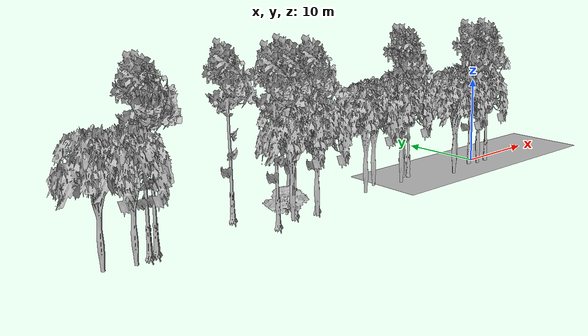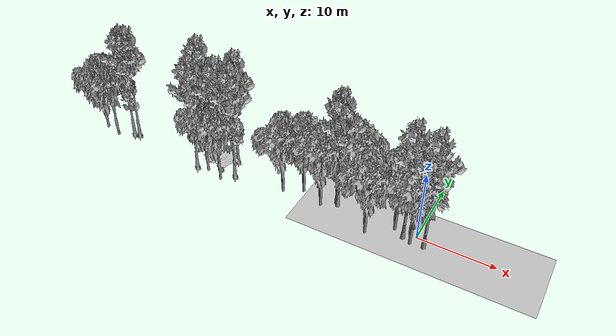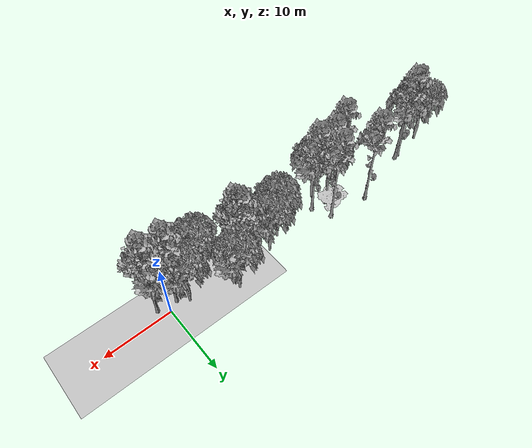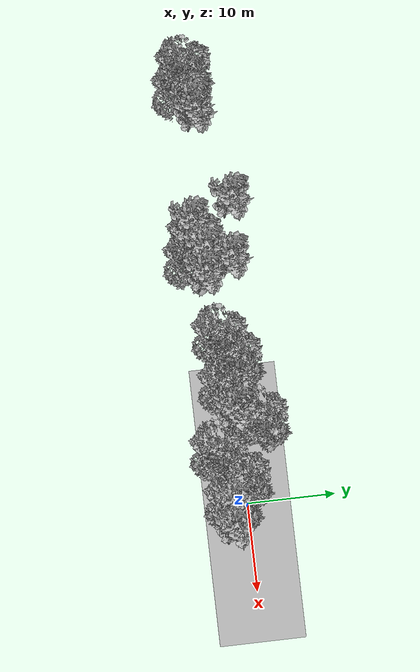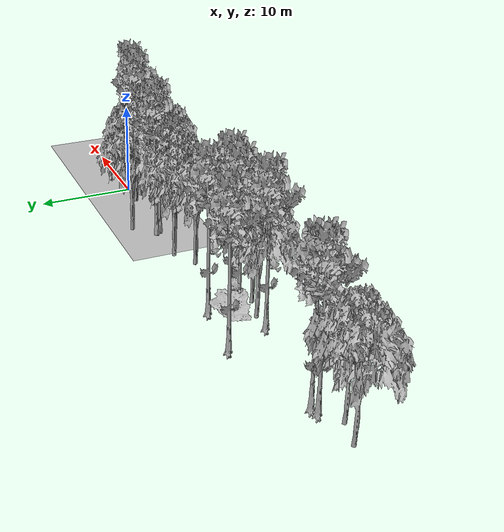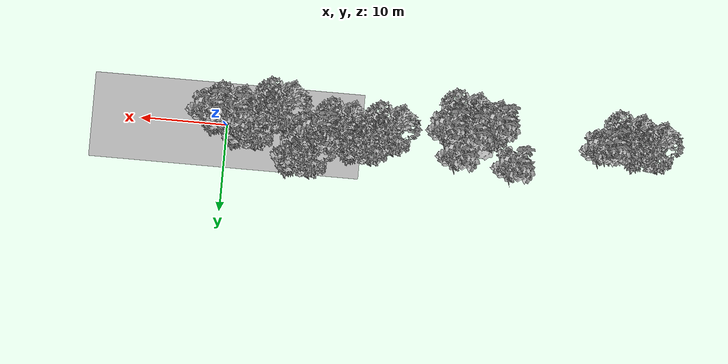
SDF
<sdf version="1.7">
 <world name="default">
  <model name="ground_plane">
   <static>1</static>
   <link name="link">
    <collision name="collision">
     <pose>-50 0 0 0 -0 0</pose>
     <geometry><plane><normal>0 0 1</normal><size>100 100</size></plane></geometry>
     <surface><contact><ode><min_depth>0.01</min_depth><max_vel>0</max_vel></ode></contact></surface>
    </collision>
    <visual name="grass">
     <cast_shadows>0</cast_shadows>
     <geometry>
      <mesh>
       <scale>0.5814285714285714 0.18142857142857144 0.1</scale>
       <uri>file://grass_plane/meshes/grass_plane.dae</uri>
      </mesh>
     </geometry>
    </visual>
   </link>
  </model>
  <model name="Tree 0">
   <static>1</static>
   <pose>-13.08776603924089 -0.5772297621485372 0 1.57079 -0 0</pose>
   <link name="link">
    <collision name="collision">
     <geometry><mesh><scale>3.5 5 3.5</scale><uri>model://tree_2/meshes/tree_2.obj</uri></mesh></geometry>
    </collision>
    <visual name="visual">
     <geometry><mesh><scale>3.5 5 3.5</scale><uri>model://tree_2/meshes/tree_2.obj</uri></mesh></geometry>
    </visual>
   </link>
  </model>
  <model name="Tree 6">
   <static>1</static>
   <pose>-6.022346612833658 -2.2716010992971363 0 1.57079 -0 0</pose>
   <link name="link">
    <collision name="collision">
     <geometry><mesh><scale>3.5 5 3.5</scale><uri>model://tree_2/meshes/tree_2.obj</uri></mesh></geometry>
    </collision>
    <visual name="visual">
     <geometry><mesh><scale>3.5 5 3.5</scale><uri>model://tree_2/meshes/tree_2.obj</uri></mesh></geometry>
    </visual>
   </link>
  </model>
  <model name="Tree 13">
   <static>1</static>
   <pose>-28.886821845267555 -0.19077743317436635 0 1.57079 -0 0</pose>
   <link name="link">
    <collision name="collision">
     <geometry><mesh><scale>3 2 3</scale><uri>model://tree_3/meshes/tree_3.obj</uri></mesh></geometry>
    </collision>
    <visual name="visual">
     <geometry><mesh><scale>3 2 3</scale><uri>model://tree_3/meshes/tree_3.obj</uri></mesh></geometry>
    </visual>
   </link>
  </model>
  <model name="Tree 16">
   <static>1</static>
   <pose>-1.4516741808712723 -0.8507931586164847 0 1.57079 -0 0</pose>
   <link name="link">
    <collision name="collision">
     <geometry><mesh><scale>3.5 5 3.5</scale><uri>model://tree_9/meshes/tree_9.obj</uri></mesh></geometry>
    </collision>
    <visual name="visual">
     <geometry><mesh><scale>3.5 5 3.5</scale><uri>model://tree_9/meshes/tree_9.obj</uri></mesh></geometry>
    </visual>
   </link>
  </model>
  <model name="Tree 19">
   <static>1</static>
   <pose>-28.370446010659656 -0.8846892080277975 0 1.57079 -0 0</pose>
   <link name="link">
    <collision name="collision">
     <geometry><mesh><scale>3.5 5 3.5</scale><uri>model://tree_9/meshes/tree_9.obj</uri></mesh></geometry>
    </collision>
    <visual name="visual">
     <geometry><mesh><scale>3.5 5 3.5</scale><uri>model://tree_9/meshes/tree_9.obj</uri></mesh></geometry>
    </visual>
   </link>
  </model>
  <model name="Tree 20">
   <static>1</static>
   <pose>-25.83420498522957 -1.1781284436010022 0 1.57079 -0 0</pose>
   <link name="link">
    <collision name="collision">
     <geometry><mesh><scale>3.5 5 3.5</scale><uri>model://tree_9/meshes/tree_9.obj</uri></mesh></geometry>
    </collision>
    <visual name="visual">
     <geometry><mesh><scale>3.5 5 3.5</scale><uri>model://tree_9/meshes/tree_9.obj</uri></mesh></geometry>
    </visual>
   </link>
  </model>
  <model name="Tree 35">
   <static>1</static>
   <pose>-46.03653669242314 -1.9384656324324148 0 1.57079 -0 0</pose>
   <link name="link">
    <collision name="collision">
     <geometry><mesh><scale>3.5 5 3.5</scale><uri>model://tree_2/meshes/tree_2.obj</uri></mesh></geometry>
    </collision>
    <visual name="visual">
     <geometry><mesh><scale>3.5 5 3.5</scale><uri>model://tree_2/meshes/tree_2.obj</uri></mesh></geometry>
    </visual>
   </link>
  </model>
  <model name="Tree 36">
   <static>1</static>
   <pose>-2.9998436178157917 0.08559341351876348 0 1.57079 -0 0</pose>
   <link name="link">
    <collision name="collision">
     <geometry><mesh><scale>3.5 5 3.5</scale><uri>model://tree_2/meshes/tree_2.obj</uri></mesh></geometry>
    </collision>
    <visual name="visual">
     <geometry><mesh><scale>3.5 5 3.5</scale><uri>model://tree_2/meshes/tree_2.obj</uri></mesh></geometry>
    </visual>
   </link>
  </model>
  <model name="Tree 39">
   <static>1</static>
   <pose>-29.720919007682674 -2.0927902786029247 0 1.57079 -0 0</pose>
   <link name="link">
    <collision name="collision">
     <geometry><mesh><scale>3.5 5 3.5</scale><uri>model://tree_2/meshes/tree_2.obj</uri></mesh></geometry>
    </collision>
    <visual name="visual">
     <geometry><mesh><scale>3.5 5 3.5</scale><uri>model://tree_2/meshes/tree_2.obj</uri></mesh></geometry>
    </visual>
   </link>
  </model>
  <model name="Tree 49">
   <static>1</static>
   <pose>-48.63403547193869 -1.2588969417029254 0 1.57079 -0 0</pose>
   <link name="link">
    <collision name="collision">
     <geometry><mesh><scale>3.5 5 3.5</scale><uri>model://tree_2/meshes/tree_2.obj</uri></mesh></geometry>
    </collision>
    <visual name="visual">
     <geometry><mesh><scale>3.5 5 3.5</scale><uri>model://tree_2/meshes/tree_2.obj</uri></mesh></geometry>
    </visual>
   </link>
  </model>
  <model name="Tree 50">
   <static>1</static>
   <pose>-33.487661060012314 2.410509743409495 0 1.57079 -0 0</pose>
   <link name="link">
    <collision name="collision">
     <geometry><mesh><scale>3.5 5 3.5</scale><uri>model://tree_9/meshes/tree_9.obj</uri></mesh></geometry>
    </collision>
    <visual name="visual">
     <geometry><mesh><scale>3.5 5 3.5</scale><uri>model://tree_9/meshes/tree_9.obj</uri></mesh></geometry>
    </visual>
   </link>
  </model>
  <model name="Tree 84">
   <static>1</static>
   <pose>1.329583517359886 -1.1436077979987278 0 1.57079 -0 0</pose>
   <link name="link">
    <collision name="collision">
     <geometry><mesh><scale>3.5 5 3.5</scale><uri>model://tree_9/meshes/tree_9.obj</uri></mesh></geometry>
    </collision>
    <visual name="visual">
     <geometry><mesh><scale>3.5 5 3.5</scale><uri>model://tree_9/meshes/tree_9.obj</uri></mesh></geometry>
    </visual>
   </link>
  </model>
  <model name="Tree 85">
   <static>1</static>
   <pose>-0.4701848807970208 -1.3226270992732303 0 1.57079 -0 0</pose>
   <link name="link">
    <collision name="collision">
     <geometry><mesh><scale>3.5 5 3.5</scale><uri>model://tree_2/meshes/tree_2.obj</uri></mesh></geometry>
    </collision>
    <visual name="visual">
     <geometry><mesh><scale>3.5 5 3.5</scale><uri>model://tree_2/meshes/tree_2.obj</uri></mesh></geometry>
    </visual>
   </link>
  </model>
  <model name="Tree 93">
   <static>1</static>
   <pose>-44.0278422973413 -0.6128820314219094 0 1.57079 -0 0</pose>
   <link name="link">
    <collision name="collision">
     <geometry><mesh><scale>3.5 5 3.5</scale><uri>model://tree_9/meshes/tree_9.obj</uri></mesh></geometry>
    </collision>
    <visual name="visual">
     <geometry><mesh><scale>3.5 5 3.5</scale><uri>model://tree_9/meshes/tree_9.obj</uri></mesh></geometry>
    </visual>
   </link>
  </model>
  <model name="Tree 97">
   <static>1</static>
   <pose>-16.211934035039384 0.6752645176371264 0 1.57079 -0 0</pose>
   <link name="link">
    <collision name="collision">
     <geometry><mesh><scale>3.5 5 3.5</scale><uri>model://tree_2/meshes/tree_2.obj</uri></mesh></geometry>
    </collision>
    <visual name="visual">
     <geometry><mesh><scale>3.5 5 3.5</scale><uri>model://tree_2/meshes/tree_2.obj</uri></mesh></geometry>
    </visual>
   </link>
  </model>
  <model name="Tree 106">
   <static>1</static>
   <pose>-43.23268463362855 -0.40762793963605404 0 1.57079 -0 0</pose>
   <link name="link">
    <collision name="collision">
     <geometry><mesh><scale>3.5 5 3.5</scale><uri>model://tree_9/meshes/tree_9.obj</uri></mesh></geometry>
    </collision>
    <visual name="visual">
     <geometry><mesh><scale>3.5 5 3.5</scale><uri>model://tree_9/meshes/tree_9.obj</uri></mesh></geometry>
    </visual>
   </link>
  </model>
  <model name="Tree 118">
   <static>1</static>
   <pose>-10.954176761635829 0.31406485488433233 0 1.57079 -0 0</pose>
   <link name="link">
    <collision name="collision">
     <geometry><mesh><scale>3.5 5 3.5</scale><uri>model://tree_9/meshes/tree_9.obj</uri></mesh></geometry>
    </collision>
    <visual name="visual">
     <geometry><mesh><scale>3.5 5 3.5</scale><uri>model://tree_9/meshes/tree_9.obj</uri></mesh></geometry>
    </visual>
   </link>
  </model>
  <model name="Tree 128">
   <static>1</static>
   <pose>-31.446909507567888 -2.1333404911613574 0 1.57079 -0 0</pose>
   <link name="link">
    <collision name="collision">
     <geometry><mesh><scale>3.5 5 3.5</scale><uri>model://tree_9/meshes/tree_9.obj</uri></mesh></geometry>
    </collision>
    <visual name="visual">
     <geometry><mesh><scale>3.5 5 3.5</scale><uri>model://tree_9/meshes/tree_9.obj</uri></mesh></geometry>
    </visual>
   </link>
  </model>
  <model name="Tree 130">
   <static>1</static>
   <pose>-11.303939484623221 0.7844658081313209 0 1.57079 -0 0</pose>
   <link name="link">
    <collision name="collision">
     <geometry><mesh><scale>3.5 5 3.5</scale><uri>model://tree_9/meshes/tree_9.obj</uri></mesh></geometry>
    </collision>
    <visual name="visual">
     <geometry><mesh><scale>3.5 5 3.5</scale><uri>model://tree_9/meshes/tree_9.obj</uri></mesh></geometry>
    </visual>
   </link>
  </model>
  <model name="Tree 143">
   <static>1</static>
   <pose>-9.32251564948217 2.715002966748486 0 1.57079 -0 0</pose>
   <link name="link">
    <collision name="collision">
     <geometry><mesh><scale>3.5 5 3.5</scale><uri>model://tree_2/meshes/tree_2.obj</uri></mesh></geometry>
    </collision>
    <visual name="visual">
     <geometry><mesh><scale>3.5 5 3.5</scale><uri>model://tree_2/meshes/tree_2.obj</uri></mesh></geometry>
    </visual>
   </link>
  </model>
  <model name="Tree 159">
   <static>1</static>
   <pose>-27.226544146493143 -2.788376593380672 0 1.57079 -0 0</pose>
   <link name="link">
    <collision name="collision">
     <geometry><mesh><scale>3.5 5 3.5</scale><uri>model://tree_2/meshes/tree_2.obj</uri></mesh></geometry>
    </collision>
    <visual name="visual">
     <geometry><mesh><scale>3.5 5 3.5</scale><uri>model://tree_2/meshes/tree_2.obj</uri></mesh></geometry>
    </visual>
   </link>
  </model>
  <model name="Tree 166">
   <static>1</static>
   <pose>-18.637608308088684 -0.6322959864863673 0 1.57079 -0 0</pose>
   <link name="link">
    <collision name="collision">
     <geometry><mesh><scale>3.5 5 3.5</scale><uri>model://tree_2/meshes/tree_2.obj</uri></mesh></geometry>
    </collision>
    <visual name="visual">
     <geometry><mesh><scale>3.5 5 3.5</scale><uri>model://tree_2/meshes/tree_2.obj</uri></mesh></geometry>
    </visual>
   </link>
  </model>
  <model name="Tree 174">
   <static>1</static>
   <pose>-27.16994714201147 1.6455348943027026 0 1.57079 -0 0</pose>
   <link name="link">
    <collision name="collision">
     <geometry><mesh><scale>3.5 5 3.5</scale><uri>model://tree_9/meshes/tree_9.obj</uri></mesh></geometry>
    </collision>
    <visual name="visual">
     <geometry><mesh><scale>3.5 5 3.5</scale><uri>model://tree_9/meshes/tree_9.obj</uri></mesh></geometry>
    </visual>
   </link>
  </model>
 </world>
</sdf>
